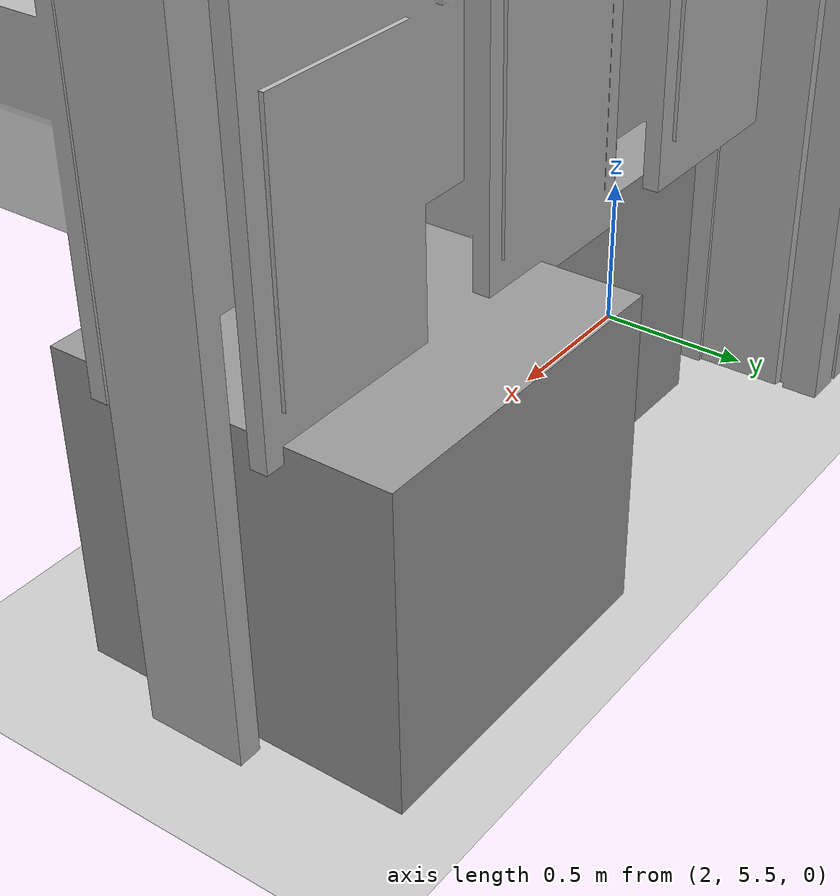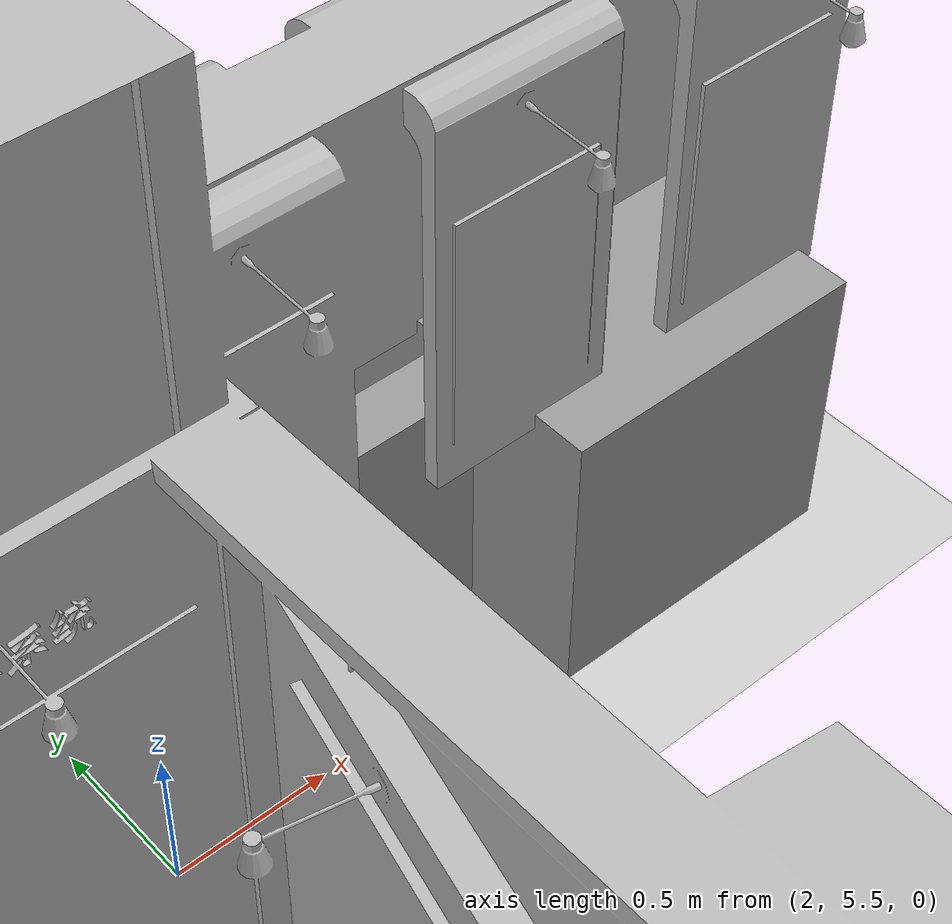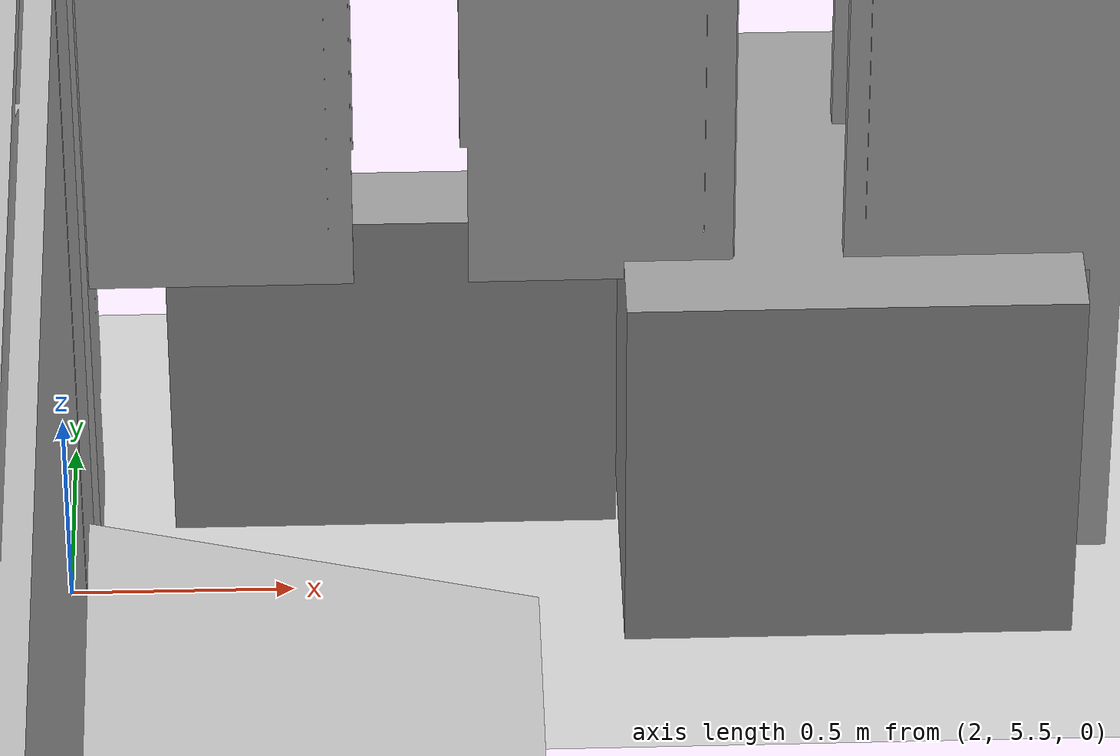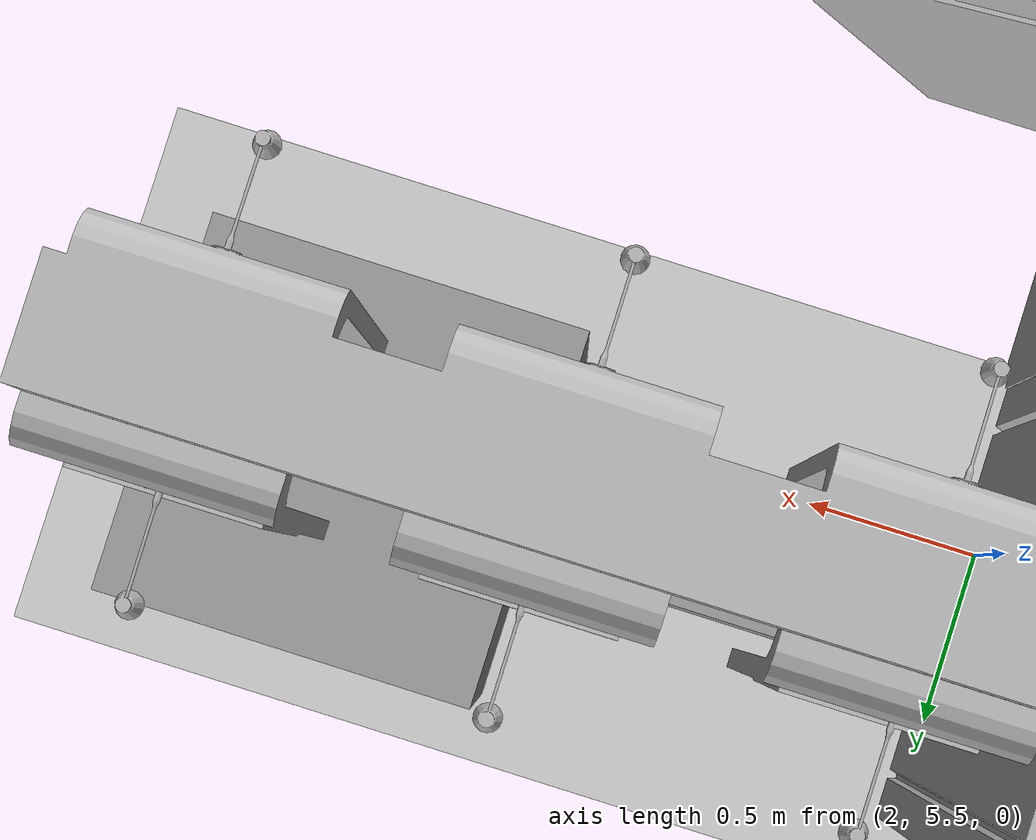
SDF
<sdf version="1.6">
 <world name="default">
  <scene>
   <ambient>0.68 0.68 0.68 1</ambient>
   <sky><sunrise>6</sunrise><clouds><speed>12</speed></clouds></sky>
   <background>0.7 0.7 0.7 1</background>
   <shadows>1</shadows>
  </scene>
  <physics name="default_physics" default="0" type="ode">
   <max_step_size>0.001</max_step_size>
   <real_time_factor>1</real_time_factor>
   <real_time_update_rate>1000</real_time_update_rate>
  </physics>
  <model name="ISCAS_groundplane">
   <static>1</static>
   <link name="link">
    <collision name="collision">
     <geometry><plane><normal>0 0 1</normal><size>12 13</size></plane></geometry>
     <surface><friction><ode><mu>100</mu><mu2>50</mu2></ode></friction></surface>
    </collision>
    <visual name="visual">
     <cast_shadows>0</cast_shadows>
     <geometry><plane><normal>0 0 1</normal><size>12 13</size></plane></geometry>
     <material>
      <script>
       <uri>model://ISCAS_groundplane/materials/scripts</uri>
       <uri>model://ISCAS_groundplane/materials/textures</uri>
       <name>ISCAS_groundplane/Image</name>
      </script>
     </material>
    </visual>
   </link>
  </model>
  <light name="sun" type="directional">
   <pose>0 0 10 0 -0 0</pose>
   <diffuse>0.8 0.8 0.8 1</diffuse>
   <specular>0.2 0.2 0.2 1</specular>
   <attenuation>
    <range>1000</range>
    <constant>0.9</constant>
    <linear>0.01</linear>
    <quadratic>0.001</quadratic>
   </attenuation>
   <direction>-0.5 0.1 -0.9</direction>
  </light>
  <model name="ISCAS_Museum">
   <link name="link">
    <inertial>
     <mass>15</mass>
     <inertia><ixx>0</ixx><ixy>0</ixy><ixz>0</ixz><iyy>0</iyy><iyz>0</iyz><izz>0</izz></inertia>
    </inertial>
    <collision name="collision">
     <geometry><mesh><uri>model://ISCAS_Museum/meshes/ISCASmuseum.obj</uri></mesh></geometry>
    </collision>
    <visual name="visual">
     <geometry><mesh><uri>model://ISCAS_Museum/meshes/ISCASmuseum.obj</uri></mesh></geometry>
    </visual>
   </link>
   <static>1</static>
   <pose>0 0 0 0 0 -1.57</pose>
  </model>
  <gravity>0 0 -9.8</gravity>
  <magnetic_field>6e-06 2.3e-05 -4.2e-05</magnetic_field>
  <atmosphere type="adiabatic"/>
  <spherical_coordinates>
   <surface_model>EARTH_WGS84</surface_model>
   <latitude_deg>0</latitude_deg>
   <longitude_deg>0</longitude_deg>
   <elevation>0</elevation>
   <heading_deg>0</heading_deg>
  </spherical_coordinates>
  <model name="unit_box">
   <pose>3.73807 5.80746 0.433017 1e-06 1e-06 -0.002019</pose>
   <link name="link">
    <inertial>
     <mass>1</mass>
     <inertia>
      <ixx>0.166667</ixx>
      <ixy>0</ixy>
      <ixz>0</ixz>
      <iyy>0.166667</iyy>
      <iyz>0</iyz>
      <izz>0.166667</izz>
     </inertia>
    </inertial>
    <collision name="collision"><geometry><box><size>1 1 0.999999</size></box></geometry></collision>
    <visual name="visual">
     <geometry><box><size>1 1 0.999999</size></box></geometry>
     <material>
      <script><name>Gazebo/Grey</name><uri>file://media/materials/scripts/gazebo.material</uri></script>
     </material>
    </visual>
   </link>
  </model>
  <model name="unit_box_clone">
   <pose>2.73193 5.81227 0.433017 1e-06 1e-06 -0.002019</pose>
   <link name="link">
    <inertial>
     <mass>1</mass>
     <inertia>
      <ixx>0.166667</ixx>
      <ixy>0</ixy>
      <ixz>0</ixz>
      <iyy>0.166667</iyy>
      <iyz>0</iyz>
      <izz>0.166667</izz>
     </inertia>
    </inertial>
    <collision name="collision"><geometry><box><size>1 0.185442 0.866044</size></box></geometry></collision>
    <visual name="visual">
     <geometry><box><size>1 0.185442 0.866044</size></box></geometry>
     <material>
      <script><name>Gazebo/Grey</name><uri>file://media/materials/scripts/gazebo.material</uri></script>
     </material>
    </visual>
   </link>
  </model>
 </world>
</sdf>
